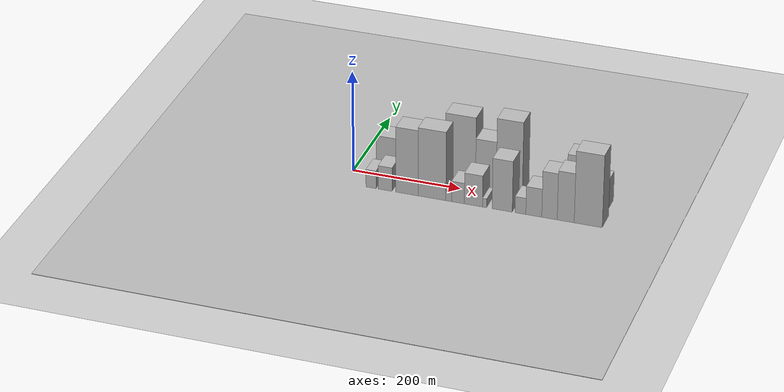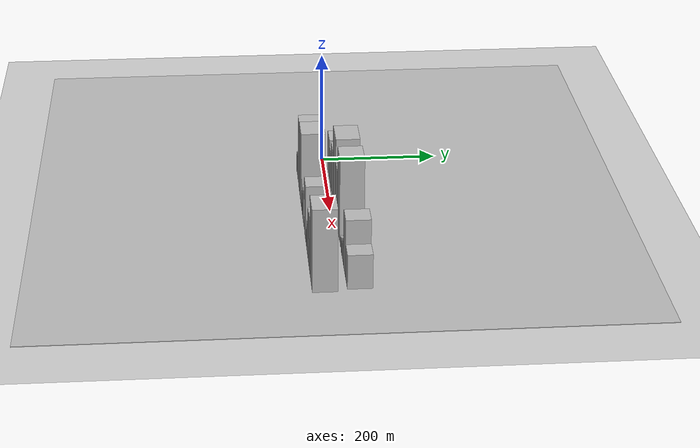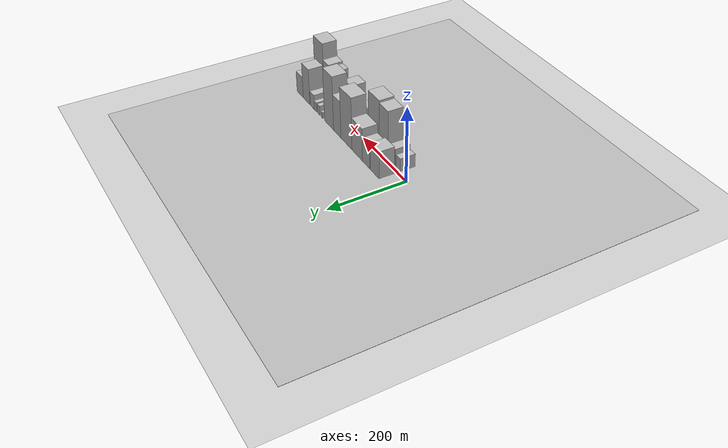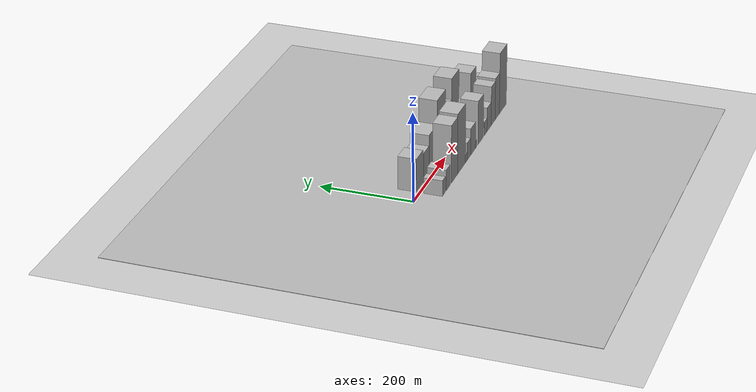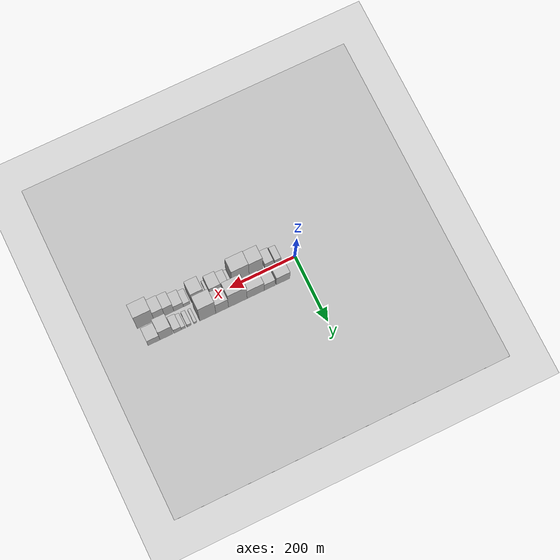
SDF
<?xml version="1.0" encoding="utf-8"?>

<sdf version="1.6">

   <world name="default">

      <gui fullscreen="0">

         <camera name="user_camera">

            <pose>-15 0 4.57585 0 0 0</pose>

            <view_controller>orbit</view_controller>

         </camera>

      </gui>

      <scene>

         <sky>

           <clouds>

             <speed>12</speed>

           </clouds>

         </sky>

         <ambient>0.4 0.4 0.4 1</ambient>

         <background>0.7 0.7 0.7 1</background>

         <shadows>1</shadows>

      </scene>

      <gravity>0 0 -9.8066</gravity>

      <magnetic_field>6e-06 2.3e-05 -4.2e-05</magnetic_field>

      <physics default="0" name="default_physics" type="ode">

         <ode>

            <solver>

               <type>quick</type>

               <iters>10</iters>

               <sor>1.0</sor>

               <use_dynamic_moi_rescaling>0</use_dynamic_moi_rescaling>

            </solver>

            <constraints>

               <cfm>0</cfm>

               <erp>0.2</erp>

               <contact_max_correcting_vel>100</contact_max_correcting_vel>

               <contact_surface_layer>0.001</contact_surface_layer>

            </constraints>

         </ode>

         <max_step_size>0.004</max_step_size>

         <real_time_factor>1</real_time_factor>

         <real_time_update_rate>250</real_time_update_rate>

      </physics>

      <light name="sun" type="directional">

         <cast_shadows>1</cast_shadows>

         <pose>0 0 10 0 0 0</pose>

         <diffuse>0.8 0.8 0.8 1</diffuse>

         <specular>0.2 0.2 0.2 1</specular>

         <attenuation>

            <range>1000</range>

            <constant>0.9</constant>

            <linear>0.01</linear>

            <quadratic>0.001</quadratic>

         </attenuation>

         <direction>-0.5 0.1 -0.9</direction>

      </light>

      <include>

         <name>ground_plane_1</name>

         <uri>model://HANNAS_ground_plane</uri>

         <pose>0 0 0  0 0 0</pose>

      </include>

      <include>

         <name>ground_plane_2</name>

         <uri>model://HANNAS_ground_plane</uri>

         <pose>100 0 0  0 0 0</pose>

      </include>

      <model name="building_1">

         <static>1</static>

         <pose frame="">60.5885 27.5000 0 0.000000 0.000000 1.570796</pose>

         <link name="link">

            <pose frame="">0 0 37.50 0 0 0</pose>

            <collision name="collision">

               <geometry>

                  <box>

                     <size>40.0000 41.1770 75.0000</size>

                  </box>

               </geometry>

               <max_contacts>10</max_contacts>

               <surface>

                  <contact>

                     <ode/>

                  </contact>

                  <bounce/>

                  <friction>

                     <torsional>

                        <ode/>

                     </torsional>

                     <ode/>

                  </friction>

               </surface>

            </collision>

            <visual name="visual">

               <cast_shadows>0</cast_shadows>

               <geometry>

                  <box>

                     <size>40.0000 41.1770 75.0000</size>

                  </box>

               </geometry>

               <material>

                  <script>

                     <uri>model://HANNAS_wall/materials/scripts</uri>

                     <uri>model://HANNAS_wall/materials/textures</uri>

                     <name>vrc/HANNAS_wall</name>

                  </script>

               </material>

            </visual>

            <self_collide>0</self_collide>

            <enable_wind>0</enable_wind>

            <kinematic>0</kinematic>

         </link>

      </model>

      <model name="building_2">

         <static>1</static>

         <pose frame="">101.1326 27.5000 0 0.000000 0.000000 1.570796</pose>

         <link name="link">

            <pose frame="">0 0 33.00 0 0 0</pose>

            <collision name="collision">

               <geometry>

                  <box>

                     <size>40.0000 33.9111 66.0000</size>

                  </box>

               </geometry>

               <max_contacts>10</max_contacts>

               <surface>

                  <contact>

                     <ode/>

                  </contact>

                  <bounce/>

                  <friction>

                     <torsional>

                        <ode/>

                     </torsional>

                     <ode/>

                  </friction>

               </surface>

            </collision>

            <visual name="visual">

               <cast_shadows>0</cast_shadows>

               <geometry>

                  <box>

                     <size>40.0000 33.9111 66.0000</size>

                  </box>

               </geometry>

               <material>

                  <script>

                     <uri>model://HANNAS_wall/materials/scripts</uri>

                     <uri>model://HANNAS_wall/materials/textures</uri>

                     <name>vrc/HANNAS_wall</name>

                  </script>

               </material>

            </visual>

            <self_collide>0</self_collide>

            <enable_wind>0</enable_wind>

            <kinematic>0</kinematic>

         </link>

      </model>

      <model name="building_3">

         <static>1</static>

         <pose frame="">143.8236 27.5000 0 0.000000 0.000000 1.570796</pose>

         <link name="link">

            <pose frame="">0 0 45.00 0 0 0</pose>

            <collision name="collision">

               <geometry>

                  <box>

                     <size>40.0000 51.4710 90.0000</size>

                  </box>

               </geometry>

               <max_contacts>10</max_contacts>

               <surface>

                  <contact>

                     <ode/>

                  </contact>

                  <bounce/>

                  <friction>

                     <torsional>

                        <ode/>

                     </torsional>

                     <ode/>

                  </friction>

               </surface>

            </collision>

            <visual name="visual">

               <cast_shadows>0</cast_shadows>

               <geometry>

                  <box>

                     <size>40.0000 51.4710 90.0000</size>

                  </box>

               </geometry>

               <material>

                  <script>

                     <uri>model://HANNAS_wall/materials/scripts</uri>

                     <uri>model://HANNAS_wall/materials/textures</uri>

                     <name>vrc/HANNAS_wall</name>

                  </script>

               </material>

            </visual>

            <self_collide>0</self_collide>

            <enable_wind>0</enable_wind>

            <kinematic>0</kinematic>

         </link>

      </model>

      <model name="building_4">

         <static>1</static>

         <pose frame="">197.4457 27.5000 0 0.000000 0.000000 1.570796</pose>

         <link name="link">

            <pose frame="">0 0 72.00 0 0 0</pose>

            <collision name="collision">

               <geometry>

                  <box>

                     <size>40.0000 55.7732 144.0000</size>

                  </box>

               </geometry>

               <max_contacts>10</max_contacts>

               <surface>

                  <contact>

                     <ode/>

                  </contact>

                  <bounce/>

                  <friction>

                     <torsional>

                        <ode/>

                     </torsional>

                     <ode/>

                  </friction>

               </surface>

            </collision>

            <visual name="visual">

               <cast_shadows>0</cast_shadows>

               <geometry>

                  <box>

                     <size>40.0000 55.7732 144.0000</size>

                  </box>

               </geometry>

               <material>

                  <script>

                     <uri>model://HANNAS_wall/materials/scripts</uri>

                     <uri>model://HANNAS_wall/materials/textures</uri>

                     <name>vrc/HANNAS_wall</name>

                  </script>

               </material>

            </visual>

            <self_collide>0</self_collide>

            <enable_wind>0</enable_wind>

            <kinematic>0</kinematic>

         </link>

      </model>

      <model name="building_5">

         <static>1</static>

         <pose frame="">244.4316 27.5000 0 0.000000 0.000000 1.570796</pose>

         <link name="link">

            <pose frame="">0 0 51.00 0 0 0</pose>

            <collision name="collision">

               <geometry>

                  <box>

                     <size>40.0000 38.1986 102.0000</size>

                  </box>

               </geometry>

               <max_contacts>10</max_contacts>

               <surface>

                  <contact>

                     <ode/>

                  </contact>

                  <bounce/>

                  <friction>

                     <torsional>

                        <ode/>

                     </torsional>

                     <ode/>

                  </friction>

               </surface>

            </collision>

            <visual name="visual">

               <cast_shadows>0</cast_shadows>

               <geometry>

                  <box>

                     <size>40.0000 38.1986 102.0000</size>

                  </box>

               </geometry>

               <material>

                  <script>

                     <uri>model://HANNAS_wall/materials/scripts</uri>

                     <uri>model://HANNAS_wall/materials/textures</uri>

                     <name>vrc/HANNAS_wall</name>

                  </script>

               </material>

            </visual>

            <self_collide>0</self_collide>

            <enable_wind>0</enable_wind>

            <kinematic>0</kinematic>

         </link>

      </model>

      <model name="building_6">

         <static>1</static>

         <pose frame="">287.5371 27.5000 0 0.000000 0.000000 1.570796</pose>

         <link name="link">

            <pose frame="">0 0 75.00 0 0 0</pose>

            <collision name="collision">

               <geometry>

                  <box>

                     <size>40.0000 48.0125 150.0000</size>

                  </box>

               </geometry>

               <max_contacts>10</max_contacts>

               <surface>

                  <contact>

                     <ode/>

                  </contact>

                  <bounce/>

                  <friction>

                     <torsional>

                        <ode/>

                     </torsional>

                     <ode/>

                  </friction>

               </surface>

            </collision>

            <visual name="visual">

               <cast_shadows>0</cast_shadows>

               <geometry>

                  <box>

                     <size>40.0000 48.0125 150.0000</size>

                  </box>

               </geometry>

               <material>

                  <script>

                     <uri>model://HANNAS_wall/materials/scripts</uri>

                     <uri>model://HANNAS_wall/materials/textures</uri>

                     <name>vrc/HANNAS_wall</name>

                  </script>

               </material>

            </visual>

            <self_collide>0</self_collide>

            <enable_wind>0</enable_wind>

            <kinematic>0</kinematic>

         </link>

      </model>

      <model name="building_7">

         <static>1</static>

         <pose frame="">324.8735 27.5000 0 0.000000 0.000000 1.570796</pose>

         <link name="link">

            <pose frame="">0 0 9.00 0 0 0</pose>

            <collision name="collision">

               <geometry>

                  <box>

                     <size>40.0000 8.6602 18.0000</size>

                  </box>

               </geometry>

               <max_contacts>10</max_contacts>

               <surface>

                  <contact>

                     <ode/>

                  </contact>

                  <bounce/>

                  <friction>

                     <torsional>

                        <ode/>

                     </torsional>

                     <ode/>

                  </friction>

               </surface>

            </collision>

            <visual name="visual">

               <cast_shadows>0</cast_shadows>

               <geometry>

                  <box>

                     <size>40.0000 8.6602 18.0000</size>

                  </box>

               </geometry>

               <material>

                  <script>

                     <uri>model://HANNAS_wall/materials/scripts</uri>

                     <uri>model://HANNAS_wall/materials/textures</uri>

                     <name>vrc/HANNAS_wall</name>

                  </script>

               </material>

            </visual>

            <self_collide>0</self_collide>

            <enable_wind>0</enable_wind>

            <kinematic>0</kinematic>

         </link>

      </model>

      <model name="building_8">

         <static>1</static>

         <pose frame="">343.4143 27.5000 0 0.000000 0.000000 1.570796</pose>

         <link name="link">

            <pose frame="">0 0 13.50 0 0 0</pose>

            <collision name="collision">

               <geometry>

                  <box>

                     <size>40.0000 12.4214 27.0000</size>

                  </box>

               </geometry>

               <max_contacts>10</max_contacts>

               <surface>

                  <contact>

                     <ode/>

                  </contact>

                  <bounce/>

                  <friction>

                     <torsional>

                        <ode/>

                     </torsional>

                     <ode/>

                  </friction>

               </surface>

            </collision>

            <visual name="visual">

               <cast_shadows>0</cast_shadows>

               <geometry>

                  <box>

                     <size>40.0000 12.4214 27.0000</size>

                  </box>

               </geometry>

               <material>

                  <script>

                     <uri>model://HANNAS_wall/materials/scripts</uri>

                     <uri>model://HANNAS_wall/materials/textures</uri>

                     <name>vrc/HANNAS_wall</name>

                  </script>

               </material>

            </visual>

            <self_collide>0</self_collide>

            <enable_wind>0</enable_wind>

            <kinematic>0</kinematic>

         </link>

      </model>

      <model name="building_9">

         <static>1</static>

         <pose frame="">360.8546 27.5000 0 0.000000 0.000000 1.570796</pose>

         <link name="link">

            <pose frame="">0 0 13.50 0 0 0</pose>

            <collision name="collision">

               <geometry>

                  <box>

                     <size>40.0000 12.4592 27.0000</size>

                  </box>

               </geometry>

               <max_contacts>10</max_contacts>

               <surface>

                  <contact>

                     <ode/>

                  </contact>

                  <bounce/>

                  <friction>

                     <torsional>

                        <ode/>

                     </torsional>

                     <ode/>

                  </friction>

               </surface>

            </collision>

            <visual name="visual">

               <cast_shadows>0</cast_shadows>

               <geometry>

                  <box>

                     <size>40.0000 12.4592 27.0000</size>

                  </box>

               </geometry>

               <material>

                  <script>

                     <uri>model://HANNAS_wall/materials/scripts</uri>

                     <uri>model://HANNAS_wall/materials/textures</uri>

                     <name>vrc/HANNAS_wall</name>

                  </script>

               </material>

            </visual>

            <self_collide>0</self_collide>

            <enable_wind>0</enable_wind>

            <kinematic>0</kinematic>

         </link>

      </model>

      <model name="building_10">

         <static>1</static>

         <pose frame="">378.2840 27.5000 0 0.000000 0.000000 1.570796</pose>

         <link name="link">

            <pose frame="">0 0 21.00 0 0 0</pose>

            <collision name="collision">

               <geometry>

                  <box>

                     <size>40.0000 22.3996 42.0000</size>

                  </box>

               </geometry>

               <max_contacts>10</max_contacts>

               <surface>

                  <contact>

                     <ode/>

                  </contact>

                  <bounce/>

                  <friction>

                     <torsional>

                        <ode/>

                     </torsional>

                     <ode/>

                  </friction>

               </surface>

            </collision>

            <visual name="visual">

               <cast_shadows>0</cast_shadows>

               <geometry>

                  <box>

                     <size>40.0000 22.3996 42.0000</size>

                  </box>

               </geometry>

               <material>

                  <script>

                     <uri>model://HANNAS_wall/materials/scripts</uri>

                     <uri>model://HANNAS_wall/materials/textures</uri>

                     <name>vrc/HANNAS_wall</name>

                  </script>

               </material>

            </visual>

            <self_collide>0</self_collide>

            <enable_wind>0</enable_wind>

            <kinematic>0</kinematic>

         </link>

      </model>

      <model name="building_11">

         <static>1</static>

         <pose frame="">411.4065 27.5000 0 0.000000 0.000000 1.570796</pose>

         <link name="link">

            <pose frame="">0 0 51.00 0 0 0</pose>

            <collision name="collision">

               <geometry>

                  <box>

                     <size>40.0000 37.8453 102.0000</size>

                  </box>

               </geometry>

               <max_contacts>10</max_contacts>

               <surface>

                  <contact>

                     <ode/>

                  </contact>

                  <bounce/>

                  <friction>

                     <torsional>

                        <ode/>

                     </torsional>

                     <ode/>

                  </friction>

               </surface>

            </collision>

            <visual name="visual">

               <cast_shadows>0</cast_shadows>

               <geometry>

                  <box>

                     <size>40.0000 37.8453 102.0000</size>

                  </box>

               </geometry>

               <material>

                  <script>

                     <uri>model://HANNAS_wall/materials/scripts</uri>

                     <uri>model://HANNAS_wall/materials/textures</uri>

                     <name>vrc/HANNAS_wall</name>

                  </script>

               </material>

            </visual>

            <self_collide>0</self_collide>

            <enable_wind>0</enable_wind>

            <kinematic>0</kinematic>

         </link>

      </model>

      <model name="building_12">

         <static>1</static>

         <pose frame="">448.2519 27.5000 0 0.000000 0.000000 1.570796</pose>

         <link name="link">

            <pose frame="">0 0 30.00 0 0 0</pose>

            <collision name="collision">

               <geometry>

                  <box>

                     <size>40.0000 35.8455 60.0000</size>

                  </box>

               </geometry>

               <max_contacts>10</max_contacts>

               <surface>

                  <contact>

                     <ode/>

                  </contact>

                  <bounce/>

                  <friction>

                     <torsional>

                        <ode/>

                     </torsional>

                     <ode/>

                  </friction>

               </surface>

            </collision>

            <visual name="visual">

               <cast_shadows>0</cast_shadows>

               <geometry>

                  <box>

                     <size>40.0000 35.8455 60.0000</size>

                  </box>

               </geometry>

               <material>

                  <script>

                     <uri>model://HANNAS_wall/materials/scripts</uri>

                     <uri>model://HANNAS_wall/materials/textures</uri>

                     <name>vrc/HANNAS_wall</name>

                  </script>

               </material>

            </visual>

            <self_collide>0</self_collide>

            <enable_wind>0</enable_wind>

            <kinematic>0</kinematic>

         </link>

      </model>

      <model name="building_13">

         <static>1</static>

         <pose frame="">49.4781 -27.5000 0 0.000000 0.000000 1.570796</pose>

         <link name="link">

            <pose frame="">0 0 18.00 0 0 0</pose>

            <collision name="collision">

               <geometry>

                  <box>

                     <size>40.0000 18.9563 36.0000</size>

                  </box>

               </geometry>

               <max_contacts>10</max_contacts>

               <surface>

                  <contact>

                     <ode/>

                  </contact>

                  <bounce/>

                  <friction>

                     <torsional>

                        <ode/>

                     </torsional>

                     <ode/>

                  </friction>

               </surface>

            </collision>

            <visual name="visual">

               <cast_shadows>0</cast_shadows>

               <geometry>

                  <box>

                     <size>40.0000 18.9563 36.0000</size>

                  </box>

               </geometry>

               <material>

                  <script>

                     <uri>model://HANNAS_wall/materials/scripts</uri>

                     <uri>model://HANNAS_wall/materials/textures</uri>

                     <name>vrc/HANNAS_wall</name>

                  </script>

               </material>

            </visual>

            <self_collide>0</self_collide>

            <enable_wind>0</enable_wind>

            <kinematic>0</kinematic>

         </link>

      </model>

      <model name="building_14">

         <static>1</static>

         <pose frame="">75.8947 -27.5000 0 0.000000 0.000000 1.570796</pose>

         <link name="link">

            <pose frame="">0 0 24.00 0 0 0</pose>

            <collision name="collision">

               <geometry>

                  <box>

                     <size>40.0000 25.8768 48.0000</size>

                  </box>

               </geometry>

               <max_contacts>10</max_contacts>

               <surface>

                  <contact>

                     <ode/>

                  </contact>

                  <bounce/>

                  <friction>

                     <torsional>

                        <ode/>

                     </torsional>

                     <ode/>

                  </friction>

               </surface>

            </collision>

            <visual name="visual">

               <cast_shadows>0</cast_shadows>

               <geometry>

                  <box>

                     <size>40.0000 25.8768 48.0000</size>

                  </box>

               </geometry>

               <material>

                  <script>

                     <uri>model://HANNAS_wall/materials/scripts</uri>

                     <uri>model://HANNAS_wall/materials/textures</uri>

                     <name>vrc/HANNAS_wall</name>

                  </script>

               </material>

            </visual>

            <self_collide>0</self_collide>

            <enable_wind>0</enable_wind>

            <kinematic>0</kinematic>

         </link>

      </model>

      <model name="building_15">

         <static>1</static>

         <pose frame="">116.3176 -27.5000 0 0.000000 0.000000 1.570796</pose>

         <link name="link">

            <pose frame="">0 0 66.00 0 0 0</pose>

            <collision name="collision">

               <geometry>

                  <box>

                     <size>40.0000 40.9692 132.0000</size>

                  </box>

               </geometry>

               <max_contacts>10</max_contacts>

               <surface>

                  <contact>

                     <ode/>

                  </contact>

                  <bounce/>

                  <friction>

                     <torsional>

                        <ode/>

                     </torsional>

                     <ode/>

                  </friction>

               </surface>

            </collision>

            <visual name="visual">

               <cast_shadows>0</cast_shadows>

               <geometry>

                  <box>

                     <size>40.0000 40.9692 132.0000</size>

                  </box>

               </geometry>

               <material>

                  <script>

                     <uri>model://HANNAS_wall/materials/scripts</uri>

                     <uri>model://HANNAS_wall/materials/textures</uri>

                     <name>vrc/HANNAS_wall</name>

                  </script>

               </material>

            </visual>

            <self_collide>0</self_collide>

            <enable_wind>0</enable_wind>

            <kinematic>0</kinematic>

         </link>

      </model>

      <model name="building_16">

         <static>1</static>

         <pose frame="">162.5385 -27.5000 0 0.000000 0.000000 1.570796</pose>

         <link name="link">

            <pose frame="">0 0 69.00 0 0 0</pose>

            <collision name="collision">

               <geometry>

                  <box>

                     <size>40.0000 51.4725 138.0000</size>

                  </box>

               </geometry>

               <max_contacts>10</max_contacts>

               <surface>

                  <contact>

                     <ode/>

                  </contact>

                  <bounce/>

                  <friction>

                     <torsional>

                        <ode/>

                     </torsional>

                     <ode/>

                  </friction>

               </surface>

            </collision>

            <visual name="visual">

               <cast_shadows>0</cast_shadows>

               <geometry>

                  <box>

                     <size>40.0000 51.4725 138.0000</size>

                  </box>

               </geometry>

               <material>

                  <script>

                     <uri>model://HANNAS_wall/materials/scripts</uri>

                     <uri>model://HANNAS_wall/materials/textures</uri>

                     <name>vrc/HANNAS_wall</name>

                  </script>

               </material>

            </visual>

            <self_collide>0</self_collide>

            <enable_wind>0</enable_wind>

            <kinematic>0</kinematic>

         </link>

      </model>

      <model name="building_17">

         <static>1</static>

         <pose frame="">193.4949 -27.5000 0 0.000000 0.000000 1.570796</pose>

         <link name="link">

            <pose frame="">0 0 10.50 0 0 0</pose>

            <collision name="collision">

               <geometry>

                  <box>

                     <size>40.0000 10.4404 21.0000</size>

                  </box>

               </geometry>

               <max_contacts>10</max_contacts>

               <surface>

                  <contact>

                     <ode/>

                  </contact>

                  <bounce/>

                  <friction>

                     <torsional>

                        <ode/>

                     </torsional>

                     <ode/>

                  </friction>

               </surface>

            </collision>

            <visual name="visual">

               <cast_shadows>0</cast_shadows>

               <geometry>

                  <box>

                     <size>40.0000 10.4404 21.0000</size>

                  </box>

               </geometry>

               <material>

                  <script>

                     <uri>model://HANNAS_wall/materials/scripts</uri>

                     <uri>model://HANNAS_wall/materials/textures</uri>

                     <name>vrc/HANNAS_wall</name>

                  </script>

               </material>

            </visual>

            <self_collide>0</self_collide>

            <enable_wind>0</enable_wind>

            <kinematic>0</kinematic>

         </link>

      </model>

      <model name="building_18">

         <static>1</static>

         <pose frame="">210.4930 -27.5000 0 0.000000 0.000000 1.570796</pose>

         <link name="link">

            <pose frame="">0 0 21.00 0 0 0</pose>

            <collision name="collision">

               <geometry>

                  <box>

                     <size>40.0000 23.5559 42.0000</size>

                  </box>

               </geometry>

               <max_contacts>10</max_contacts>

               <surface>

                  <contact>

                     <ode/>

                  </contact>

                  <bounce/>

                  <friction>

                     <torsional>

                        <ode/>

                     </torsional>

                     <ode/>

                  </friction>

               </surface>

            </collision>

            <visual name="visual">

               <cast_shadows>0</cast_shadows>

               <geometry>

                  <box>

                     <size>40.0000 23.5559 42.0000</size>

                  </box>

               </geometry>

               <material>

                  <script>

                     <uri>model://HANNAS_wall/materials/scripts</uri>

                     <uri>model://HANNAS_wall/materials/textures</uri>

                     <name>vrc/HANNAS_wall</name>

                  </script>

               </material>

            </visual>

            <self_collide>0</self_collide>

            <enable_wind>0</enable_wind>

            <kinematic>0</kinematic>

         </link>

      </model>

      <model name="building_19">

         <static>1</static>

         <pose frame="">238.9981 -27.5000 0 0.000000 0.000000 1.570796</pose>

         <link name="link">

            <pose frame="">0 0 31.50 0 0 0</pose>

            <collision name="collision">

               <geometry>

                  <box>

                     <size>40.0000 33.4544 63.0000</size>

                  </box>

               </geometry>

               <max_contacts>10</max_contacts>

               <surface>

                  <contact>

                     <ode/>

                  </contact>

                  <bounce/>

                  <friction>

                     <torsional>

                        <ode/>

                     </torsional>

                     <ode/>

                  </friction>

               </surface>

            </collision>

            <visual name="visual">

               <cast_shadows>0</cast_shadows>

               <geometry>

                  <box>

                     <size>40.0000 33.4544 63.0000</size>

                  </box>

               </geometry>

               <material>

                  <script>

                     <uri>model://HANNAS_wall/materials/scripts</uri>

                     <uri>model://HANNAS_wall/materials/textures</uri>

                     <name>vrc/HANNAS_wall</name>

                  </script>

               </material>

            </visual>

            <self_collide>0</self_collide>

            <enable_wind>0</enable_wind>

            <kinematic>0</kinematic>

         </link>

      </model>

      <model name="building_20">

         <static>1</static>

         <pose frame="">259.5247 -27.5000 0 0.000000 0.000000 1.570796</pose>

         <link name="link">

            <pose frame="">0 0 9.00 0 0 0</pose>

            <collision name="collision">

               <geometry>

                  <box>

                     <size>40.0000 7.5987 18.0000</size>

                  </box>

               </geometry>

               <max_contacts>10</max_contacts>

               <surface>

                  <contact>

                     <ode/>

                  </contact>

                  <bounce/>

                  <friction>

                     <torsional>

                        <ode/>

                     </torsional>

                     <ode/>

                  </friction>

               </surface>

            </collision>

            <visual name="visual">

               <cast_shadows>0</cast_shadows>

               <geometry>

                  <box>

                     <size>40.0000 7.5987 18.0000</size>

                  </box>

               </geometry>

               <material>

                  <script>

                     <uri>model://HANNAS_wall/materials/scripts</uri>

                     <uri>model://HANNAS_wall/materials/textures</uri>

                     <name>vrc/HANNAS_wall</name>

                  </script>

               </material>

            </visual>

            <self_collide>0</self_collide>

            <enable_wind>0</enable_wind>

            <kinematic>0</kinematic>

         </link>

      </model>

      <model name="building_21">

         <static>1</static>

         <pose frame="">291.7061 -27.5000 0 0.000000 0.000000 1.570796</pose>

         <link name="link">

            <pose frame="">0 0 51.00 0 0 0</pose>

            <collision name="collision">

               <geometry>

                  <box>

                     <size>40.0000 36.7641 102.0000</size>

                  </box>

               </geometry>

               <max_contacts>10</max_contacts>

               <surface>

                  <contact>

                     <ode/>

                  </contact>

                  <bounce/>

                  <friction>

                     <torsional>

                        <ode/>

                     </torsional>

                     <ode/>

                  </friction>

               </surface>

            </collision>

            <visual name="visual">

               <cast_shadows>0</cast_shadows>

               <geometry>

                  <box>

                     <size>40.0000 36.7641 102.0000</size>

                  </box>

               </geometry>

               <material>

                  <script>

                     <uri>model://HANNAS_wall/materials/scripts</uri>

                     <uri>model://HANNAS_wall/materials/textures</uri>

                     <name>vrc/HANNAS_wall</name>

                  </script>

               </material>

            </visual>

            <self_collide>0</self_collide>

            <enable_wind>0</enable_wind>

            <kinematic>0</kinematic>

         </link>

      </model>

      <model name="building_22">

         <static>1</static>

         <pose frame="">324.8968 -27.5000 0 0.000000 0.000000 1.570796</pose>

         <link name="link">

            <pose frame="">0 0 16.50 0 0 0</pose>

            <collision name="collision">

               <geometry>

                  <box>

                     <size>40.0000 19.6174 33.0000</size>

                  </box>

               </geometry>

               <max_contacts>10</max_contacts>

               <surface>

                  <contact>

                     <ode/>

                  </contact>

                  <bounce/>

                  <friction>

                     <torsional>

                        <ode/>

                     </torsional>

                     <ode/>

                  </friction>

               </surface>

            </collision>

            <visual name="visual">

               <cast_shadows>0</cast_shadows>

               <geometry>

                  <box>

                     <size>40.0000 19.6174 33.0000</size>

                  </box>

               </geometry>

               <material>

                  <script>

                     <uri>model://HANNAS_wall/materials/scripts</uri>

                     <uri>model://HANNAS_wall/materials/textures</uri>

                     <name>vrc/HANNAS_wall</name>

                  </script>

               </material>

            </visual>

            <self_collide>0</self_collide>

            <enable_wind>0</enable_wind>

            <kinematic>0</kinematic>

         </link>

      </model>

      <model name="building_23">

         <static>1</static>

         <pose frame="">349.2079 -27.5000 0 0.000000 0.000000 1.570796</pose>

         <link name="link">

            <pose frame="">0 0 28.50 0 0 0</pose>

            <collision name="collision">

               <geometry>

                  <box>

                     <size>40.0000 29.0049 57.0000</size>

                  </box>

               </geometry>

               <max_contacts>10</max_contacts>

               <surface>

                  <contact>

                     <ode/>

                  </contact>

                  <bounce/>

                  <friction>

                     <torsional>

                        <ode/>

                     </torsional>

                     <ode/>

                  </friction>

               </surface>

            </collision>

            <visual name="visual">

               <cast_shadows>0</cast_shadows>

               <geometry>

                  <box>

                     <size>40.0000 29.0049 57.0000</size>

                  </box>

               </geometry>

               <material>

                  <script>

                     <uri>model://HANNAS_wall/materials/scripts</uri>

                     <uri>model://HANNAS_wall/materials/textures</uri>

                     <name>vrc/HANNAS_wall</name>

                  </script>

               </material>

            </visual>

            <self_collide>0</self_collide>

            <enable_wind>0</enable_wind>

            <kinematic>0</kinematic>

         </link>

      </model>

      <model name="building_24">

         <static>1</static>

         <pose frame="">377.6719 -27.5000 0 0.000000 0.000000 1.570796</pose>

         <link name="link">

            <pose frame="">0 0 46.50 0 0 0</pose>

            <collision name="collision">

               <geometry>

                  <box>

                     <size>40.0000 27.9230 93.0000</size>

                  </box>

               </geometry>

               <max_contacts>10</max_contacts>

               <surface>

                  <contact>

                     <ode/>

                  </contact>

                  <bounce/>

                  <friction>

                     <torsional>

                        <ode/>

                     </torsional>

                     <ode/>

                  </friction>

               </surface>

            </collision>

            <visual name="visual">

               <cast_shadows>0</cast_shadows>

               <geometry>

                  <box>

                     <size>40.0000 27.9230 93.0000</size>

                  </box>

               </geometry>

               <material>

                  <script>

                     <uri>model://HANNAS_wall/materials/scripts</uri>

                     <uri>model://HANNAS_wall/materials/textures</uri>

                     <name>vrc/HANNAS_wall</name>

                  </script>

               </material>

            </visual>

            <self_collide>0</self_collide>

            <enable_wind>0</enable_wind>

            <kinematic>0</kinematic>

         </link>

      </model>

      <model name="building_25">

         <static>1</static>

         <pose frame="">406.9449 -27.5000 0 0.000000 0.000000 1.570796</pose>

         <link name="link">

            <pose frame="">0 0 49.50 0 0 0</pose>

            <collision name="collision">

               <geometry>

                  <box>

                     <size>40.0000 30.6229 99.0000</size>

                  </box>

               </geometry>

               <max_contacts>10</max_contacts>

               <surface>

                  <contact>

                     <ode/>

                  </contact>

                  <bounce/>

                  <friction>

                     <torsional>

                        <ode/>

                     </torsional>

                     <ode/>

                  </friction>

               </surface>

            </collision>

            <visual name="visual">

               <cast_shadows>0</cast_shadows>

               <geometry>

                  <box>

                     <size>40.0000 30.6229 99.0000</size>

                  </box>

               </geometry>

               <material>

                  <script>

                     <uri>model://HANNAS_wall/materials/scripts</uri>

                     <uri>model://HANNAS_wall/materials/textures</uri>

                     <name>vrc/HANNAS_wall</name>

                  </script>

               </material>

            </visual>

            <self_collide>0</self_collide>

            <enable_wind>0</enable_wind>

            <kinematic>0</kinematic>

         </link>

      </model>

      <model name="building_26">

         <static>1</static>

         <pose frame="">447.5137 -27.5000 0 0.000000 0.000000 1.570796</pose>

         <link name="link">

            <pose frame="">0 0 72.00 0 0 0</pose>

            <collision name="collision">

               <geometry>

                  <box>

                     <size>40.0000 50.5146 144.0000</size>

                  </box>

               </geometry>

               <max_contacts>10</max_contacts>

               <surface>

                  <contact>

                     <ode/>

                  </contact>

                  <bounce/>

                  <friction>

                     <torsional>

                        <ode/>

                     </torsional>

                     <ode/>

                  </friction>

               </surface>

            </collision>

            <visual name="visual">

               <cast_shadows>0</cast_shadows>

               <geometry>

                  <box>

                     <size>40.0000 50.5146 144.0000</size>

                  </box>

               </geometry>

               <material>

                  <script>

                     <uri>model://HANNAS_wall/materials/scripts</uri>

                     <uri>model://HANNAS_wall/materials/textures</uri>

                     <name>vrc/HANNAS_wall</name>

                  </script>

               </material>

            </visual>

            <self_collide>0</self_collide>

            <enable_wind>0</enable_wind>

            <kinematic>0</kinematic>

         </link>

      </model>

   </world>

</sdf>

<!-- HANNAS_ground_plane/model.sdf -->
<sdf version="1.4">
<model name="HANNAS_ground_plane">
  <static>true</static>
    <link name="link">
      <collision name="collision">
        <geometry>
          <plane>
            <normal>0 0 1</normal>
            <size>1000 1000</size>
          </plane>
        </geometry>
        <surface>
          <friction>
            <ode>
              <mu>100</mu>
              <mu2>50</mu2>
            </ode>
          </friction>
        </surface>
      </collision>
      <visual name="visual">
        <cast_shadows>false</cast_shadows>
        <geometry>
          <plane>
            <normal>0 0 1</normal>
            <size>1000 1000</size>
          </plane>
        </geometry>
        <material>
          <script>
            <uri>model://HANNAS_ground_plane/materials/scripts/HANNAS_ground_plane.material</uri>
	    <uri>model://HANNAS_ground_plane/materials/textures</uri>
            <name>HANNASGroundPlane/Image</name>
          </script>
        </material>
      </visual>
    </link>
  </model>
</sdf>
